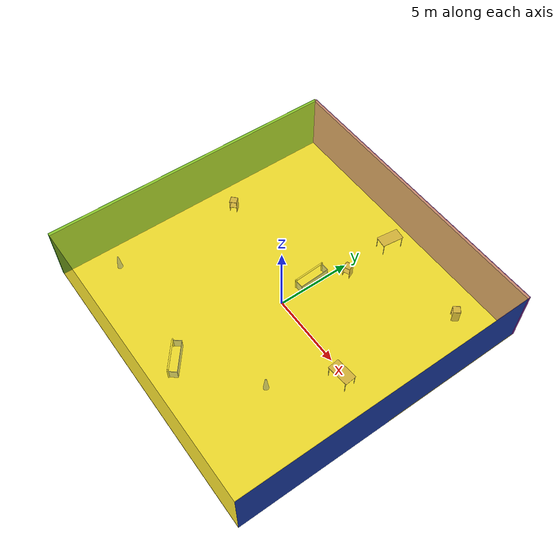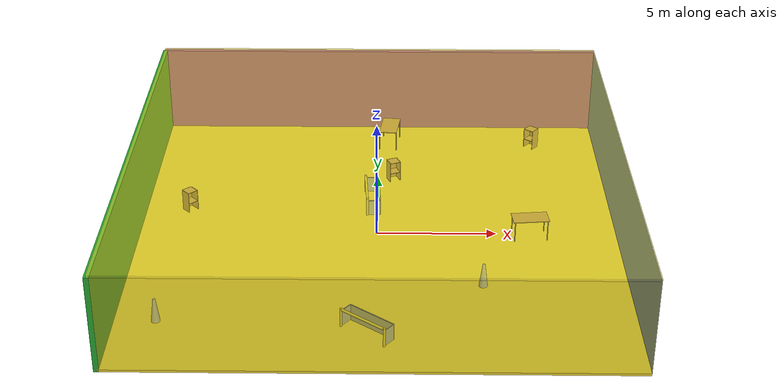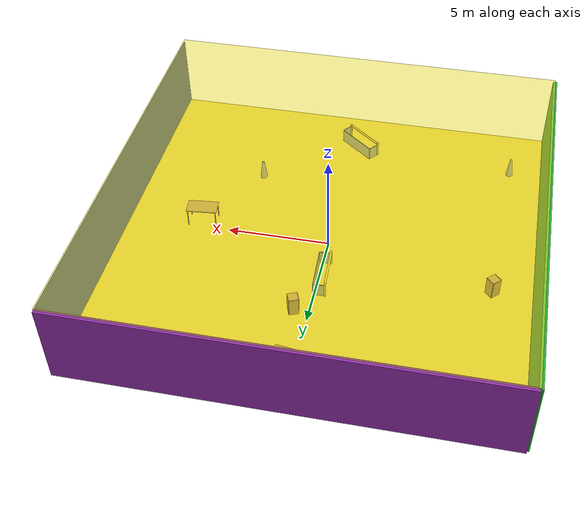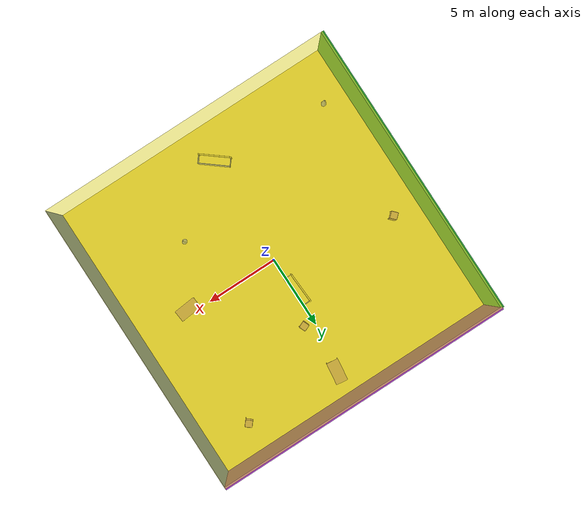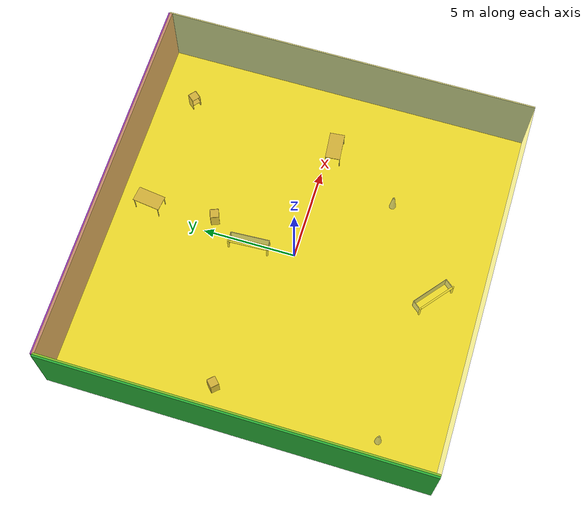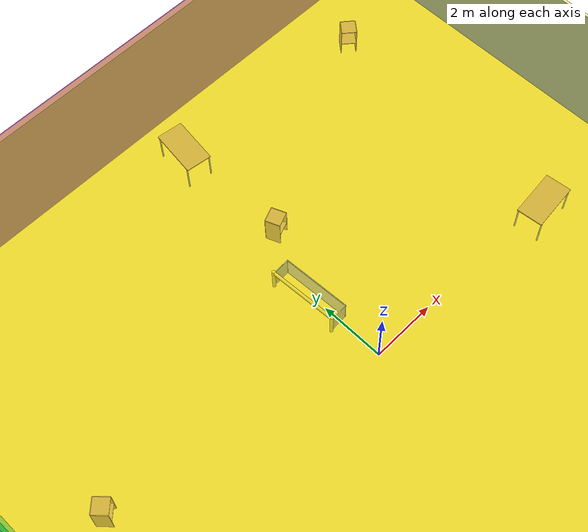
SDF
<sdf version="1.4">
 <world name="default">
  <physics type="ode">
   <max_step_size>0.001</max_step_size>
   <real_time_factor>1</real_time_factor>
   <real_time_update_rate>1000</real_time_update_rate>
   <gravity>0 0 -9.8</gravity>
  </physics>
  <scene><ambient>0.4 0.4 0.4 1</ambient><background>0.7 0.7 0.7 1</background><shadows>1</shadows></scene>
  <model name="Surrounding">
   <static>1</static>
   <link name="Ceiling">
    <collision name="Ceiling_Collision"><geometry><box><size>20 20 0.1</size></box></geometry></collision>
    <visual name="Ceiling_Visual">
     <geometry><box><size>20 20 0.1</size></box></geometry>
     <material>
      <script>
       <uri>file://media/materials/scripts/gazebo.material</uri>
       <name>Gazebo/YellowTransparent</name>
      </script>
     </material>
    </visual>
    <pose>0 0 4.05 0 0 0</pose>
   </link>
   <link name="Wall_South">
    <collision name="Wall_South_Collision">
     <geometry><box><size>20 0 4</size></box></geometry>
     <pose>0 0 2 0 -0 0</pose>
    </collision>
    <visual name="Wall_South_Visual">
     <pose>0 0 2 0 -0 0</pose>
     <geometry><box><size>20 0 4</size></box></geometry>
     <material>
      <script>
       <uri>file://media/materials/scripts/gazebo.material</uri>
       <name>Gazebo/YellowTransparent</name>
      </script>
     </material>
    </visual>
    <velocity_decay><linear>0</linear><angular>0</angular></velocity_decay>
    <pose>0 -10 0 0 -0 0</pose>
   </link>
   <link name="Wall_East">
    <collision name="Wall_21_Collision">
     <geometry><box><size>20 0 4</size></box></geometry>
     <pose>0 0 2 0 -0 0</pose>
    </collision>
    <visual name="Wall_21_Visual">
     <pose>0 0 2 0 -0 0</pose>
     <geometry><box><size>20 0 4</size></box></geometry>
     <material>
      <script><uri>file://media/materials/scripts/gazebo.material</uri><name>Gazebo/BlueGlow</name></script>
     </material>
    </visual>
    <velocity_decay><linear>0</linear><angular>0</angular></velocity_decay>
    <pose>10 0 0 0 -0 1.5708</pose>
   </link>
   <link name="Wall_North">
    <collision name="Wall_22_Collision">
     <geometry><box><size>20 0.2 4</size></box></geometry>
     <pose>0 0 2 0 -0 0</pose>
    </collision>
    <visual name="Wall_22_Visual">
     <pose>0 0 2 0 -0 0</pose>
     <geometry><box><size>20 0.2 4</size></box></geometry>
     <material>
      <script><uri>file://media/materials/scripts/gazebo.material</uri><name>Gazebo/PurpleGlow</name></script>
     </material>
    </visual>
    <velocity_decay><linear>0</linear><angular>0</angular></velocity_decay>
    <pose>0 10 0 0 -0 0</pose>
   </link>
   <link name="Wall_West">
    <collision name="Wall_23_Collision">
     <geometry><box><size>20 0.2 4</size></box></geometry>
     <pose>0 0 2 0 -0 0</pose>
    </collision>
    <visual name="Wall_23_Visual">
     <pose>0 0 2 0 -0 0</pose>
     <geometry><box><size>20 0.2 4</size></box></geometry>
     <material>
      <script><uri>file://media/materials/scripts/gazebo.material</uri><name>Gazebo/Green</name></script>
     </material>
    </visual>
    <velocity_decay><linear>0</linear><angular>0</angular></velocity_decay>
    <pose>-10 0 0 0 0 -1.5708</pose>
   </link>
   <link name="Ground_link">
    <collision name="collision">
     <pose>0 0 .05 0 -0 0</pose>
     <geometry><box><size>20 20 0.1</size></box></geometry>
    </collision>
    <visual name="visual">
     <pose>0 0 .05 0 -0 0</pose>
     <geometry><box><size>20 20 0.1</size></box></geometry>
     <material>
      <script><uri>file://media/materials/scripts/gazebo.material</uri><name>Gazebo/ZincYellow</name></script>
     </material>
    </visual>
   </link>
   <static>1</static>
  </model>
  <spherical_coordinates>
   <surface_model>EARTH_WGS84</surface_model>
   <latitude_deg>0</latitude_deg>
   <longitude_deg>0</longitude_deg>
   <elevation>0</elevation>
   <heading_deg>0</heading_deg>
  </spherical_coordinates>
  <light name="lightball_0" type="diffuse">
   <diffuse>0.8 0.8 0.8 1</diffuse>
   <specular>0.2 0.2 0.2 1</specular>
   <attenuation>
    <range>100</range>
    <constant>0.7</constant>
    <linear>0.01</linear>
    <quadratic>0.001</quadratic>
   </attenuation>
   <direction>-0.5 0.1 -0.9</direction>
   <pose>-6.79103017961 0.0354191761921 2.33388774306 0 0 0</pose>
  </light>
  <light name="lightball_1" type="diffuse">
   <diffuse>0.8 0.8 0.8 1</diffuse>
   <specular>0.2 0.2 0.2 1</specular>
   <attenuation>
    <range>100</range>
    <constant>0.7</constant>
    <linear>0.01</linear>
    <quadratic>0.001</quadratic>
   </attenuation>
   <direction>-0.5 0.1 -0.9</direction>
   <pose>1.33317197807 -3.55616305327 2.38047923901 0 0 0</pose>
  </light>
  <light name="lightball_2" type="diffuse">
   <diffuse>0.8 0.8 0.8 1</diffuse>
   <specular>0.2 0.2 0.2 1</specular>
   <attenuation>
    <range>100</range>
    <constant>0.7</constant>
    <linear>0.01</linear>
    <quadratic>0.001</quadratic>
   </attenuation>
   <direction>-0.5 0.1 -0.9</direction>
   <pose>3.43488921967 2.02893286606 2.43083884731 0 0 0</pose>
  </light>
  <light name="lightball_3" type="diffuse">
   <diffuse>0.8 0.8 0.8 1</diffuse>
   <specular>0.2 0.2 0.2 1</specular>
   <attenuation>
    <range>100</range>
    <constant>0.7</constant>
    <linear>0.01</linear>
    <quadratic>0.001</quadratic>
   </attenuation>
   <direction>-0.5 0.1 -0.9</direction>
   <pose>-4.85880842733 -6.5623301307 2.21706784299 0 0 0</pose>
  </light>
  <light name="lightball_4" type="diffuse">
   <diffuse>0.8 0.8 0.8 1</diffuse>
   <specular>0.2 0.2 0.2 1</specular>
   <attenuation>
    <range>100</range>
    <constant>0.7</constant>
    <linear>0.01</linear>
    <quadratic>0.001</quadratic>
   </attenuation>
   <direction>-0.5 0.1 -0.9</direction>
   <pose>6.05987367999 5.48981768074 2.76946934187 0 0 0</pose>
  </light>
  <light name="lightball_5" type="diffuse">
   <diffuse>0.8 0.8 0.8 1</diffuse>
   <specular>0.2 0.2 0.2 1</specular>
   <attenuation>
    <range>100</range>
    <constant>0.7</constant>
    <linear>0.01</linear>
    <quadratic>0.001</quadratic>
   </attenuation>
   <direction>-0.5 0.1 -0.9</direction>
   <pose>6.56339030953 8.2707805174 3.58836989086 0 0 0</pose>
  </light>
  <light name="lightball_6" type="diffuse">
   <diffuse>0.8 0.8 0.8 1</diffuse>
   <specular>0.2 0.2 0.2 1</specular>
   <attenuation>
    <range>100</range>
    <constant>0.7</constant>
    <linear>0.01</linear>
    <quadratic>0.001</quadratic>
   </attenuation>
   <direction>-0.5 0.1 -0.9</direction>
   <pose>5.90946491364 -2.11532528845 3.38974960764 0 0 0</pose>
  </light>
  <light name="lightball_7" type="diffuse">
   <diffuse>0.8 0.8 0.8 1</diffuse>
   <specular>0.2 0.2 0.2 1</specular>
   <attenuation>
    <range>100</range>
    <constant>0.7</constant>
    <linear>0.01</linear>
    <quadratic>0.001</quadratic>
   </attenuation>
   <direction>-0.5 0.1 -0.9</direction>
   <pose>-0.0118239311408 -2.56105044736 2.89115096069 0 0 0</pose>
  </light>
  <light name="lightball_8" type="diffuse">
   <diffuse>0.8 0.8 0.8 1</diffuse>
   <specular>0.2 0.2 0.2 1</specular>
   <attenuation>
    <range>100</range>
    <constant>0.7</constant>
    <linear>0.01</linear>
    <quadratic>0.001</quadratic>
   </attenuation>
   <direction>-0.5 0.1 -0.9</direction>
   <pose>-8.62720301168 -2.31378861816 3.2668297692 0 0 0</pose>
  </light>
  <light name="lightball_9" type="diffuse">
   <diffuse>0.8 0.8 0.8 1</diffuse>
   <specular>0.2 0.2 0.2 1</specular>
   <attenuation>
    <range>100</range>
    <constant>0.7</constant>
    <linear>0.01</linear>
    <quadratic>0.001</quadratic>
   </attenuation>
   <direction>-0.5 0.1 -0.9</direction>
   <pose>4.92774618867 -8.74841232914 1.45044178993 0 0 0</pose>
  </light>
  <light name="lightball_10" type="diffuse">
   <diffuse>0.8 0.8 0.8 1</diffuse>
   <specular>0.2 0.2 0.2 1</specular>
   <attenuation>
    <range>100</range>
    <constant>0.7</constant>
    <linear>0.01</linear>
    <quadratic>0.001</quadratic>
   </attenuation>
   <direction>-0.5 0.1 -0.9</direction>
   <pose>-8.36432228534 6.41303015521 1.8584933931 0 0 0</pose>
  </light>
  <light name="lightball_11" type="diffuse">
   <diffuse>0.8 0.8 0.8 1</diffuse>
   <specular>0.2 0.2 0.2 1</specular>
   <attenuation>
    <range>100</range>
    <constant>0.7</constant>
    <linear>0.01</linear>
    <quadratic>0.001</quadratic>
   </attenuation>
   <direction>-0.5 0.1 -0.9</direction>
   <pose>8.11873165354 0.524687690901 3.32675878363 0 0 0</pose>
  </light>
  <include>
   <uri>model://construction_cone</uri>
   <pose>-8.30340875239 -6.8246993335 0 0 0 3.03986761576</pose>
  </include>
  <include><uri>model://cabinet</uri><pose>-8.031428211 1.80001982507 0 0 0 2.31858333699</pose></include>
  <include>
   <uri>model://robocup_3Dsim_goal</uri>
   <pose>-0.445390269747 -7.7470411372 0 0 0 0.894836464458</pose>
  </include>
  <include>
   <uri>model://robocup_3Dsim_goal</uri>
   <pose>-0.467536439538 2.42656246881 0 0 0 0.0526013932984</pose>
  </include>
  <include><uri>model://cabinet</uri><pose>0.697877065365 4.61995500474 0 0 0 1.95635108228</pose></include>
  <include><uri>model://table</uri><pose>0.518166998602 8.20771199871 0 0 0 1.44493500952</pose></include>
  <include>
   <uri>model://construction_cone</uri>
   <pose>4.2454677194 -4.20096881167 0 0 0 1.27348278854</pose>
  </include>
  <include><uri>model://table</uri><pose>6.36696744796 -0.351753345895 0 0 0 0.0977885651316</pose></include>
  <include><uri>model://cabinet</uri><pose>7.07916789974 7.9096444909 0 0 0 0.878333141167</pose></include>
 </world>
</sdf>

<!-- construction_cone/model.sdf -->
<sdf version="1.5">
  <model name="Construction Cone">
    <link name="link">
      <collision name="collision">
        <geometry>
          <mesh>
            <scale>10 10 10</scale>
            <uri>file://isr-testbed/construction_cone/meshes/construction_cone.dae</uri>
          </mesh>
        </geometry>
      </collision>
      <visual name="visual">
        <geometry>
          <mesh>
            <scale>10 10 10</scale>
            <uri>file://isr-testbed/construction_cone/meshes/construction_cone.dae</uri>
          </mesh>
        </geometry>
      </visual>
    </link>
  </model>
</sdf>

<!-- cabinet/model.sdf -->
<sdf version="1.5">
  <model name="cabinet">
    <static>true</static>
    <link name="cabinet_bottom_plate">
      <inertial>
        <pose>0 0 -1 0 0 0</pose>
        <inertia>
          <ixx>2.050000</ixx>
          <ixy>0</ixy>
          <ixz>0</ixz>
          <iyy>2.050000</iyy>
          <iyz>0</iyz>
          <izz>2.050000</izz>
        </inertia>
        <mass>25.000000</mass>
      </inertial>
      <collision name="cabinet_bottom_plate_geom">
        <pose>0 0 0.010000 0 0 0</pose>
        <geometry>
          <box>
            <size>0.450000 0.450000 0.020000</size>
          </box>
        </geometry>
      </collision>
      <visual name="cabinet_bottom_plate_geom_visual">
        <pose>0 0 0.010000 0 0 0</pose>
        <geometry>
          <box>
            <size>0.450000 0.450000 0.020000</size>
          </box>
        </geometry>
        <material>
          <script>
            <uri>model://media/materials/scripts/gazebo.material</uri>
            <name>Gazebo/Wood</name>
          </script>
        </material>
      </visual>
      <collision name="cabinet_bottom_plate_geom_cabinet_back_plate">
        <pose>0.235000 0 0.510000 0 0 0</pose>
        <geometry>
          <box>
            <size>0.020000 0.450000 1.020000</size>
          </box>
        </geometry>
      </collision>
      <visual name="cabinet_bottom_plate_geom_cabinet_back_plate_visual">
        <pose>0.235000 0 0.510000 0 0 0</pose>
        <geometry>
          <box>
            <size>0.020000 0.450000 1.020000</size>
          </box>
        </geometry>
        <material>
          <script>
            <uri>model://media/materials/scripts/gazebo.material</uri>
            <name>Gazebo/Wood</name>
          </script>
        </material>
      </visual>
      <collision name="cabinet_bottom_plate_geom_cabinet_left_plate">
        <pose>0 0.235000 0.510000 0 0 0</pose>
        <geometry>
          <box>
            <size>0.450000 0.020000 1.020000</size>
          </box>
        </geometry>
      </collision>
      <visual name="cabinet_bottom_plate_geom_cabinet_left_plate_visual">
        <pose>0 0.235000 0.510000 0 0 0</pose>
        <geometry>
          <box>
            <size>0.450000 0.020000 1.020000</size>
          </box>
        </geometry>
        <material>
          <script>
            <uri>model://media/materials/scripts/gazebo.material</uri>
            <name>Gazebo/Wood</name>
          </script>
        </material>
      </visual>
      <collision name="cabinet_bottom_plate_geom_cabinet_middle_plate">
        <pose>0 0 0.510000 0 0 0</pose>
        <geometry>
          <box>
            <size>0.450000 0.450000 0.020000</size>
          </box>
        </geometry>
      </collision>
      <visual name="cabinet_bottom_plate_geom_cabinet_middle_plate_visual">
        <pose>0 0 0.510000 0 0 0</pose>
        <geometry>
          <box>
            <size>0.450000 0.450000 0.020000</size>
          </box>
        </geometry>
        <material>
          <script>
            <uri>model://media/materials/scripts/gazebo.material</uri>
            <name>Gazebo/Wood</name>
          </script>
        </material>
      </visual>
      <collision name="cabinet_bottom_plate_geom_cabinet_right_plate">
        <pose>0 -0.235000 0.510000 0 0 0</pose>
        <geometry>
          <box>
            <size>0.450000 0.020000 1.020000</size>
          </box>
        </geometry>
      </collision>
      <visual name="cabinet_bottom_plate_geom_cabinet_right_plate_visual">
        <pose>0 -0.235000 0.510000 0 0 0</pose>
        <geometry>
          <box>
            <size>0.450000 0.020000 1.020000</size>
          </box>
        </geometry>
        <material>
          <script>
            <uri>model://media/materials/scripts/gazebo.material</uri>
            <name>Gazebo/Wood</name>
          </script>
        </material>
      </visual>
      <collision name="cabinet_bottom_plate_geom_cabinet_top_plate">
        <pose>0 0 1.010000 0 0 0</pose>
        <geometry>
          <box>
            <size>0.450000 0.450000 0.020000</size>
          </box>
        </geometry>
      </collision>
      <visual name="cabinet_bottom_plate_geom_cabinet_top_plate_visual">
        <pose>0 0 1.010000 0 0 0</pose>
        <geometry>
          <box>
            <size>0.450000 0.450000 0.020000</size>
          </box>
        </geometry>
        <material>
          <script>
            <uri>model://media/materials/scripts/gazebo.material</uri>
            <name>Gazebo/Wood</name>
          </script>
        </material>
      </visual>
    </link>
  </model>
</sdf>

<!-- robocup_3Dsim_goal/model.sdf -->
<sdf version="1.5">
  <model name="robocup_3d_goal">
    <static>true</static>
    <link name="left_post">
      <pose>0 1.05 0.45 0 0 0</pose>
      <collision name="collision">
        <geometry>
          <cylinder>
            <radius>0.05</radius>
            <length>0.9</length>
          </cylinder>
        </geometry>
      </collision>
      <visual name="visual">
        <geometry>
          <cylinder>
            <radius>0.05</radius>
            <length>0.9</length>
          </cylinder>
        </geometry>
        <material>
          <script>
            <uri>file://media/materials/scripts/gazebo.material</uri>
            <name>Gazebo/ZincYellow</name>
          </script>
        </material>
      </visual>
    </link>
    <link name="left_support_horiz_lower">
      <pose>0.30 1.05 0.01 0 0 0</pose>
      <collision name="collision">
        <geometry>
          <box>
            <size>0.50 0.02 0.02</size>
          </box>
        </geometry>
      </collision>
      <visual name="visual">
        <geometry>
          <box>
            <size>0.50 0.02 0.02</size>
          </box>
        </geometry>
        <material>
          <script>
            <uri>file://media/materials/scripts/gazebo.material</uri>
            <name>Gazebo/White</name>
          </script>
        </material>
      </visual>
    </link>
    <link name="left_support_horiz_upper">
      <pose>0.30 1.05 0.79 0 0 0</pose>
      <collision name="collision">
        <geometry>
          <box>
            <size>0.50 0.02 0.02</size>
          </box>
        </geometry>
      </collision>
      <visual name="visual">
        <geometry>
          <box>
            <size>0.50 0.02 0.02</size>
          </box>
        </geometry>
        <material>
          <script>
            <uri>file://media/materials/scripts/gazebo.material</uri>
            <name>Gazebo/White</name>
          </script>
        </material>
      </visual>
    </link>
    <link name="left_support_vertical">
      <pose>0.56 1.05 0.4 0 1.5708 0</pose>
      <collision name="collision">
        <geometry>
          <box>
            <size>0.80 0.02 0.02</size>
          </box>
        </geometry>
      </collision>
      <visual name="visual">
        <geometry>
          <box>
            <size>0.80 0.02 0.02</size>
          </box>
        </geometry>
        <material>
          <script>
            <uri>file://media/materials/scripts/gazebo.material</uri>
            <name>Gazebo/White</name>
          </script>
        </material>
      </visual>
    </link>
    <link name="right_support_horiz_lower">
      <pose>0.30 -1.05 0.01 0 0 0</pose>
      <collision name="collision">
        <geometry>
          <box>
            <size>0.50 0.02 0.02</size>
          </box>
        </geometry>
      </collision>
      <visual name="visual">
        <geometry>
          <box>
            <size>0.50 0.02 0.02</size>
          </box>
        </geometry>
        <material>
          <script>
            <uri>file://media/materials/scripts/gazebo.material</uri>
            <name>Gazebo/White</name>
          </script>
        </material>
      </visual>
    </link>
    <link name="right_support_horiz_upper">
      <pose>0.30 -1.05 0.79 0 0 0</pose>
      <collision name="collision">
        <geometry>
          <box>
            <size>0.50 0.02 0.02</size>
          </box>
        </geometry>
      </collision>
      <visual name="visual">
        <geometry>
          <box>
            <size>0.50 0.02 0.02</size>
          </box>
        </geometry>
        <material>
          <script>
            <uri>file://media/materials/scripts/gazebo.material</uri>
            <name>Gazebo/White</name>
          </script>
        </material>
      </visual>
    </link>
    <link name="right_support_vertical">
      <pose>0.56 -1.05 0.4 0 1.5708 0</pose>
      <collision name="collision">
        <geometry>
          <box>
            <size>0.80 0.02 0.02</size>
          </box>
        </geometry>
      </collision>
      <visual name="visual">
        <geometry>
          <box>
            <size>0.80 0.02 0.02</size>
          </box>
        </geometry>
        <material>
          <script>
            <uri>file://media/materials/scripts/gazebo.material</uri>
            <name>Gazebo/White</name>
          </script>
        </material>
      </visual>
    </link>
    <link name="center_support_horiz_lower">
      <pose>0.56 0 0.01 0 1.5708 0</pose>
      <collision name="collision">
        <geometry>
          <box>
            <size>0.02 2.08 0.02</size>
          </box>
        </geometry>
      </collision>
      <visual name="visual">
        <geometry>
          <box>
            <size>0.02 2.08 0.02</size>
          </box>
        </geometry>
        <material>
          <script>
            <uri>file://media/materials/scripts/gazebo.material</uri>
            <name>Gazebo/White</name>
          </script>
        </material>
      </visual>
    </link>
    <link name="center_support_horiz_upper">
      <pose>0.56 0 0.79 0 1.5708 0</pose>
      <collision name="collision">
        <geometry>
          <box>
            <size>0.02 2.08 0.02</size>
          </box>
        </geometry>
      </collision>
      <visual name="visual">
        <geometry>
          <box>
            <size>0.02 2.08 0.02</size>
          </box>
        </geometry>
        <material>
          <script>
            <uri>file://media/materials/scripts/gazebo.material</uri>
            <name>Gazebo/White</name>
          </script>
        </material>
      </visual>
    </link>
    <link name="right_post">
      <pose>0 -1.05 0.45 0 0 0</pose>
      <collision name="collision">
        <geometry>
          <cylinder>
            <radius>0.05</radius>
            <length>0.9</length>
          </cylinder>
        </geometry>
      </collision>
      <visual name="visual">
        <geometry>
          <cylinder>
            <radius>0.05</radius>
            <length>0.9</length>
          </cylinder>
        </geometry>
        <material>
          <script>
            <uri>file://media/materials/scripts/gazebo.material</uri>
            <name>Gazebo/ZincYellow</name>
          </script>
        </material>
      </visual>
    </link>
    <link name="crossbar">
      <pose>0 0 0.85 1.57 1.57 0</pose>
      <collision name="collision">
        <geometry>
          <cylinder>
            <radius>0.05</radius>
            <length>2.0</length>
          </cylinder>
        </geometry>
      </collision>
      <visual name="visual">
        <geometry>
          <cylinder>
            <radius>0.05</radius>
            <length>2.0</length>
          </cylinder>
        </geometry>
        <material>
          <script>
            <uri>file://media/materials/scripts/gazebo.material</uri>
            <name>Gazebo/ZincYellow</name>
          </script>
        </material>
      </visual>
    </link>
    <link name="center_net">
      <pose>0.56 0 0.40 0 0 0</pose>
      <collision name="collision">
        <geometry>
          <box>
            <size>0.01 2.1 0.80</size>
          </box>
        </geometry>
      </collision>
      <visual name="visual">
        <geometry>
          <box>
            <size>0.01 2.1 0.80</size>
          </box>
        </geometry>
        <material>
          <script>
            <uri>model://../model_source/models/robocup09_spl_field/materials/scripts/</uri>
            <uri>model://../model_source/models/robocup09_spl_field/materials/textures/</uri>
            <name>RoboCup/Net</name>
          </script>
        </material>
      </visual>
    </link>
    <link name="left_net">
      <pose>0.30 1.05 0.40 0 0 0</pose>
      <collision name="collision">
        <geometry>
          <box>
            <size>0.50 0.01 0.76</size>
          </box>
        </geometry>
      </collision>
      <visual name="visual">
        <geometry>
          <box>
            <size>0.50 0.01 0.76</size>
          </box>
        </geometry>
        <material>
          <script>
            <uri>model://../model_source/models/robocup09_spl_field/materials/scripts/</uri>
            <uri>model://../model_source/models/robocup09_spl_field/materials/textures/</uri>
            <name>RoboCup/Net</name>
          </script>
        </material>
      </visual>
    </link>
    <link name="right_net">
      <pose>0.30 -1.05 0.40 0 0 0</pose>
      <collision name="collision">
        <geometry>
          <box>
            <size>0.50 0.01 0.76</size>
          </box>
        </geometry>
      </collision>
      <visual name="visual">
        <geometry>
          <box>
            <size>0.50 0.01 0.76</size>
          </box>
        </geometry>
        <material>
          <script>
            <uri>model://../model_source/models/robocup09_spl_field/materials/scripts/</uri>
            <uri>model://../model_source/models/robocup09_spl_field/materials/textures/</uri>
            <name>RoboCup/Net</name>
          </script>
        </material>
      </visual>
    </link>
  </model>
</sdf>

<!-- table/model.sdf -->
<sdf version="1.5">
  <model name="table">
    <static>true</static>
    <link name="link">
      <collision name="surface">
        <pose>0 0 1.0 0 0 0</pose>
        <geometry>
          <box>
            <size>1.5 0.8 0.03</size>
          </box>
        </geometry>
        <surface>
          <friction>
            <ode>
              <mu>0.6</mu>
              <mu2>0.6</mu2>
            </ode>
          </friction>
        </surface>
      </collision>
      <visual name="visual1">
        <pose>0 0 1.0 0 0 0</pose>
        <geometry>
          <box>
            <size>1.5 0.8 0.03</size>
          </box>
        </geometry>
        <material>
          <script>
            <uri>model://media/materials/scripts/gazebo.material</uri>
            <name>Gazebo/Wood</name>
          </script>
        </material>
      </visual>
      <collision name="front_left_leg">
        <pose>0.68 0.38 0.5 0 0 0</pose>
        <geometry>
          <cylinder>
            <radius>0.02</radius>
            <length>1.0</length>
          </cylinder>
        </geometry>
      </collision>
      <visual name="front_left_leg">
        <pose>0.68 0.38 0.5 0 0 0</pose>
        <geometry>
          <cylinder>
            <radius>0.02</radius>
            <length>1.0</length>
          </cylinder>
        </geometry>
        <material>
          <script>
            <uri>model://media/materials/scripts/gazebo.material</uri>
            <name>Gazebo/Grey</name>
          </script>
        </material>
      </visual>
      <collision name="front_right_leg">
        <pose>0.68 -0.38 0.5 0 0 0</pose>
        <geometry>
          <cylinder>
            <radius>0.02</radius>
            <length>1.0</length>
          </cylinder>
        </geometry>
      </collision>
      <visual name="front_right_leg">
        <pose>0.68 -0.38 0.5 0 0 0</pose>
        <geometry>
          <cylinder>
            <radius>0.02</radius>
            <length>1.0</length>
          </cylinder>
        </geometry>
        <material>
          <script>
            <uri>model://media/materials/scripts/gazebo.material</uri>
            <name>Gazebo/Grey</name>
          </script>
        </material>
      </visual>
      <collision name="back_right_leg">
        <pose>-0.68 -0.38 0.5 0 0 0</pose>
        <geometry>
          <cylinder>
            <radius>0.02</radius>
            <length>1.0</length>
          </cylinder>
        </geometry>
      </collision>
      <visual name="back_right_leg">
        <pose>-0.68 -0.38 0.5 0 0 0</pose>
        <geometry>
          <cylinder>
            <radius>0.02</radius>
            <length>1.0</length>
          </cylinder>
        </geometry>
        <material>
          <script>
            <uri>model://media/materials/scripts/gazebo.material</uri>
            <name>Gazebo/Grey</name>
          </script>
        </material>
      </visual>
      <collision name="back_left_leg">
        <pose>-0.68 0.38 0.5 0 0 0</pose>
        <geometry>
          <cylinder>
            <radius>0.02</radius>
            <length>1.0</length>
          </cylinder>
        </geometry>
      </collision>
      <visual name="back_left_leg">
        <pose>-0.68 0.38 0.5 0 0 0</pose>
        <geometry>
          <cylinder>
            <radius>0.02</radius>
            <length>1.0</length>
          </cylinder>
        </geometry>
        <material>
          <script>
            <uri>model://media/materials/scripts/gazebo.material</uri>
            <name>Gazebo/Grey</name>
          </script>
        </material>
      </visual>
    </link>
  </model>
</sdf>
